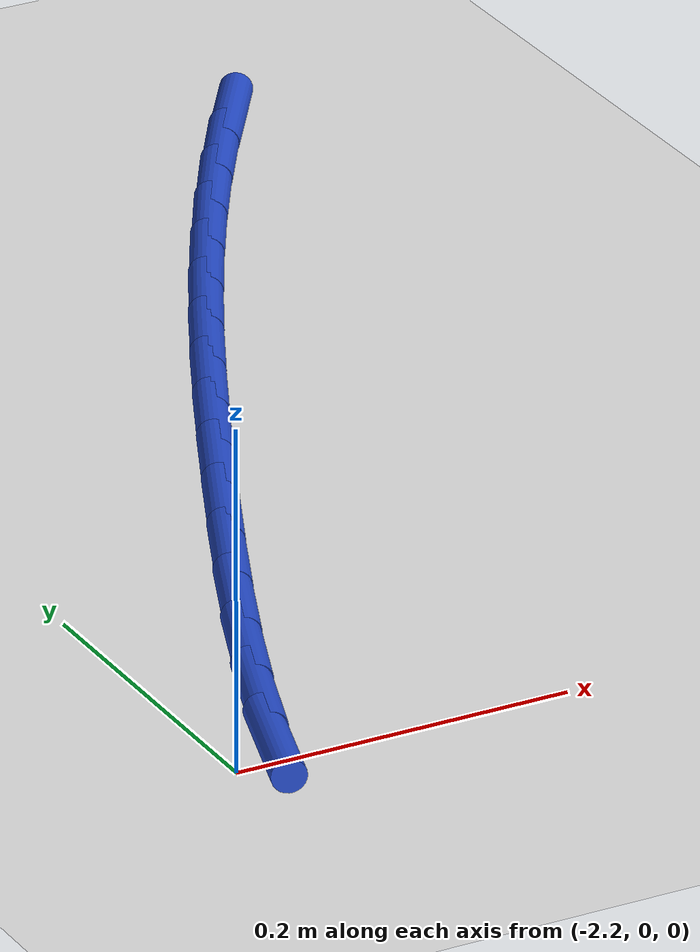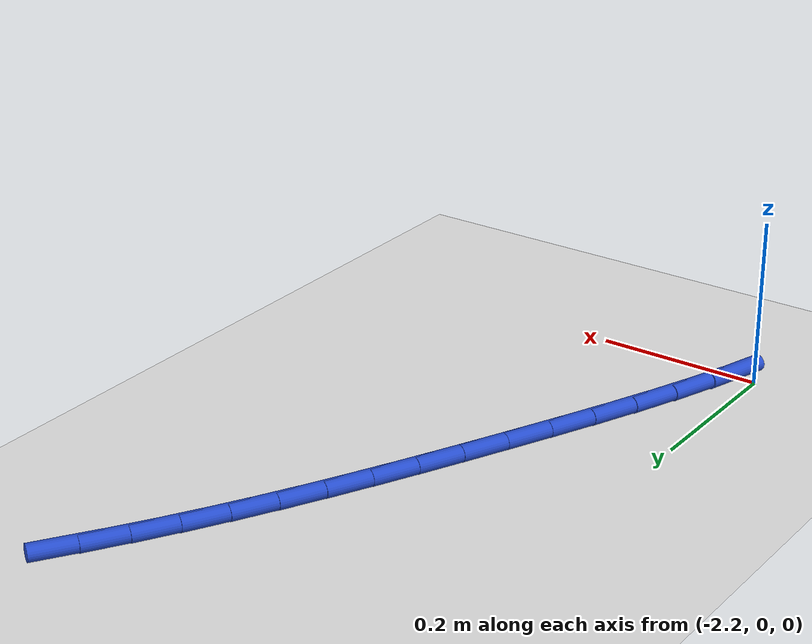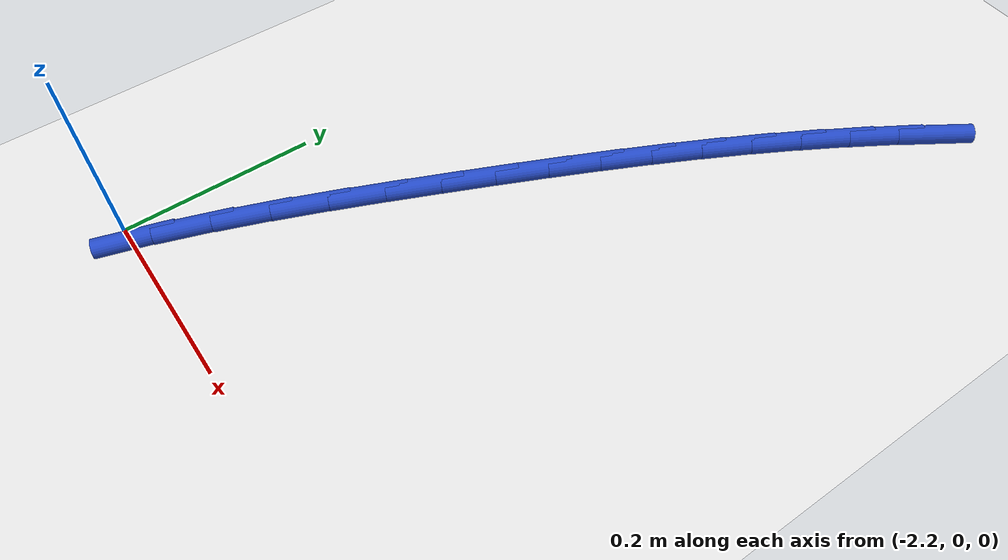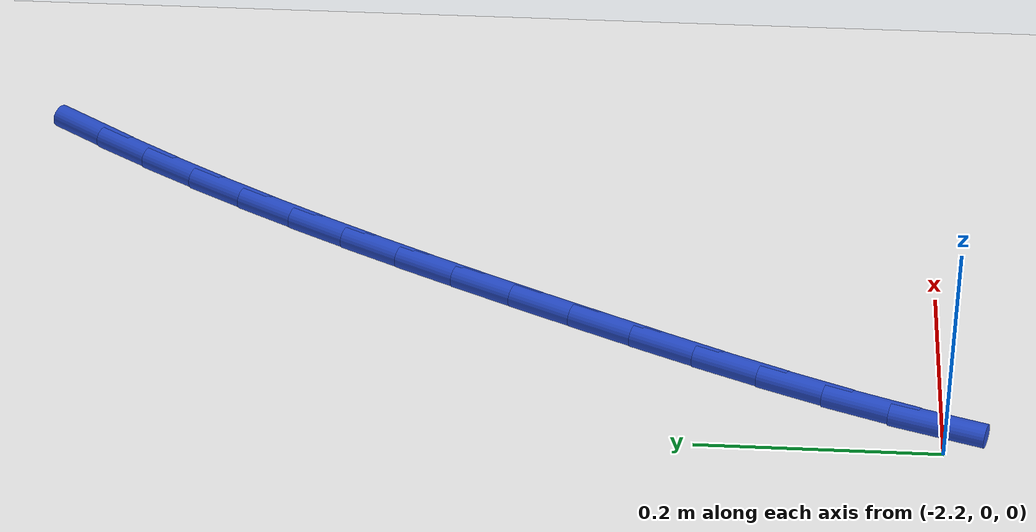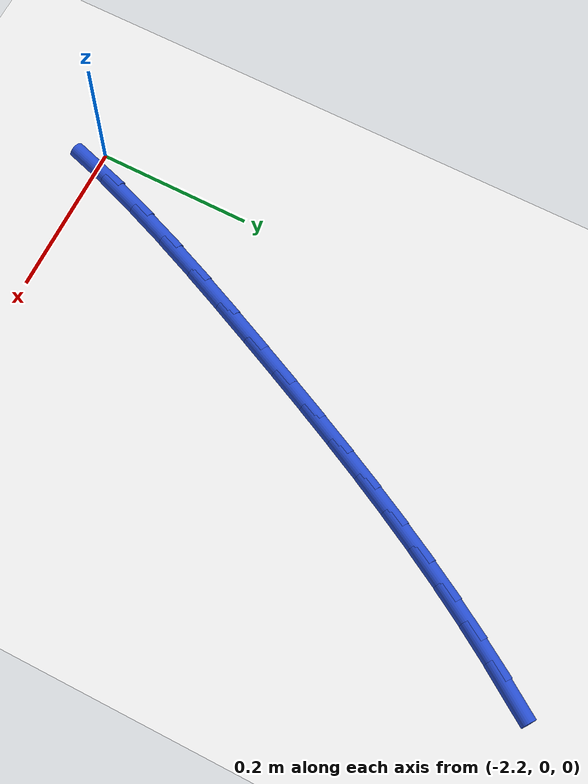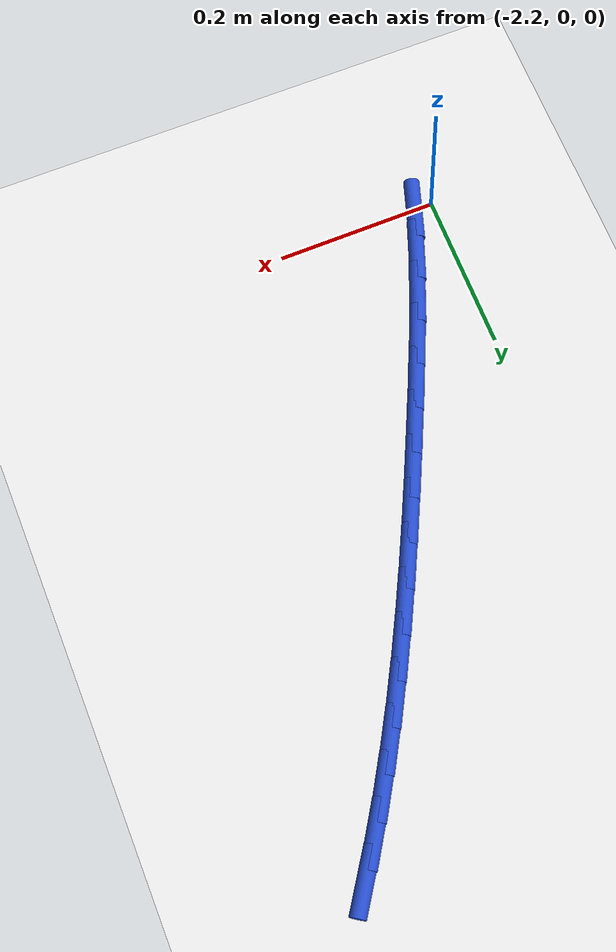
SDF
<sdf version="1.6">
 <world name="default">
  <model name="ground_plane">
   <static>1</static>
   <link name="link">
    <collision name="collision">
     <geometry><plane><normal>0 0 1</normal><size>100 100</size></plane></geometry>
     <surface><friction><ode><mu>100</mu><mu2>50</mu2></ode></friction></surface>
    </collision>
    <visual name="visual">
     <cast_shadows>0</cast_shadows>
     <geometry><plane><normal>0 0 1</normal><size>100 100</size></plane></geometry>
     <material>
      <script><uri>file://media/materials/scripts/gazebo.material</uri><name>Gazebo/WhiteGlow</name></script>
     </material>
    </visual>
   </link>
  </model>
  <model name="line">
   <link name="link_49">
    <pose>-1.8139922437743232 0.7383030247636497 0.01 0 1.57 0.9834664471267759</pose>
    <collision name="collision">
     <geometry><cylinder><radius>0.01</radius><length>0.08</length></cylinder></geometry>
    </collision>
    <visual name="visual">
     <material>
      <script><name>Gazebo/Blue</name><uri>file://media/materials/scripts/gazebo.material</uri></script>
     </material>
     <geometry><cylinder><radius>0.01</radius><length>0.08</length></cylinder></geometry>
    </visual>
   </link>
   <link name="link_50">
    <pose>-1.8427407423011142 0.6951173591197221 0.01 0 1.57 1.0109530893557677</pose>
    <collision name="collision">
     <geometry><cylinder><radius>0.01</radius><length>0.08</length></cylinder></geometry>
    </collision>
    <visual name="visual">
     <material>
      <script><name>Gazebo/Blue</name><uri>file://media/materials/scripts/gazebo.material</uri></script>
     </material>
     <geometry><cylinder><radius>0.01</radius><length>0.08</length></cylinder></geometry>
    </visual>
   </link>
   <link name="link_51">
    <pose>-1.8703745813255972 0.6510253463327991 0.01 0 1.57 1.0359826514307917</pose>
    <collision name="collision">
     <geometry><cylinder><radius>0.01</radius><length>0.08</length></cylinder></geometry>
    </collision>
    <visual name="visual">
     <material>
      <script><name>Gazebo/Blue</name><uri>file://media/materials/scripts/gazebo.material</uri></script>
     </material>
     <geometry><cylinder><radius>0.01</radius><length>0.08</length></cylinder></geometry>
    </visual>
   </link>
   <link name="link_52">
    <pose>-1.8970238676693079 0.6060401735559058 0.01 0 1.57 1.0584781533014944</pose>
    <collision name="collision">
     <geometry><cylinder><radius>0.01</radius><length>0.08</length></cylinder></geometry>
    </collision>
    <visual name="visual">
     <material>
      <script><name>Gazebo/Blue</name><uri>file://media/materials/scripts/gazebo.material</uri></script>
     </material>
     <geometry><cylinder><radius>0.01</radius><length>0.08</length></cylinder></geometry>
    </visual>
   </link>
   <link name="link_53">
    <pose>-1.9228187081537818 0.5601750279420664 0.01 0 1.57 1.0783964470671912</pose>
    <collision name="collision">
     <geometry><cylinder><radius>0.01</radius><length>0.08</length></cylinder></geometry>
    </collision>
    <visual name="visual">
     <material>
      <script><name>Gazebo/Blue</name><uri>file://media/materials/scripts/gazebo.material</uri></script>
     </material>
     <geometry><cylinder><radius>0.01</radius><length>0.08</length></cylinder></geometry>
    </visual>
   </link>
   <link name="link_54">
    <pose>-1.9478892096005556 0.5134430966443052 0.01 0 1.57 1.0957238981362276</pose>
    <collision name="collision">
     <geometry><cylinder><radius>0.01</radius><length>0.08</length></cylinder></geometry>
    </collision>
    <visual name="visual">
     <material>
      <script><name>Gazebo/Blue</name><uri>file://media/materials/scripts/gazebo.material</uri></script>
     </material>
     <geometry><cylinder><radius>0.01</radius><length>0.08</length></cylinder></geometry>
    </visual>
   </link>
   <link name="link_55">
    <pose>-1.9723654788311644 0.4658575668156473 0.01 0 1.57 1.1104718906891442</pose>
    <collision name="collision">
     <geometry><cylinder><radius>0.01</radius><length>0.08</length></cylinder></geometry>
    </collision>
    <visual name="visual">
     <material>
      <script><name>Gazebo/Blue</name><uri>file://media/materials/scripts/gazebo.material</uri></script>
     </material>
     <geometry><cylinder><radius>0.01</radius><length>0.08</length></cylinder></geometry>
    </visual>
   </link>
   <link name="link_56">
    <pose>-1.9963776226671446 0.41743162560911734 0.01 0 1.57 1.1226724806841313</pose>
    <collision name="collision">
     <geometry><cylinder><radius>0.01</radius><length>0.08</length></cylinder></geometry>
    </collision>
    <visual name="visual">
     <material>
      <script><name>Gazebo/Blue</name><uri>file://media/materials/scripts/gazebo.material</uri></script>
     </material>
     <geometry><cylinder><radius>0.01</radius><length>0.08</length></cylinder></geometry>
    </visual>
   </link>
   <link name="link_57">
    <pose>-2.0200557479300314 0.3681784601777396 0.01 0 1.57 1.1323744177511488</pose>
    <collision name="collision">
     <geometry><cylinder><radius>0.01</radius><length>0.08</length></cylinder></geometry>
    </collision>
    <visual name="visual">
     <material>
      <script><name>Gazebo/Blue</name><uri>file://media/materials/scripts/gazebo.material</uri></script>
     </material>
     <geometry><cylinder><radius>0.01</radius><length>0.08</length></cylinder></geometry>
    </visual>
   </link>
   <link name="link_58">
    <pose>-2.0435299614413616 0.31811125767453846 0.01 0 1.57 1.1396396657931522</pose>
    <collision name="collision">
     <geometry><cylinder><radius>0.01</radius><length>0.08</length></cylinder></geometry>
    </collision>
    <visual name="visual">
     <material>
      <script><name>Gazebo/Blue</name><uri>file://media/materials/scripts/gazebo.material</uri></script>
     </material>
     <geometry><cylinder><radius>0.01</radius><length>0.08</length></cylinder></geometry>
    </visual>
   </link>
   <link name="link_59">
    <pose>-2.0669303700226687 0.26724320525253853 0.01 0 1.57 1.1458406209262892</pose>
    <collision name="collision">
     <geometry><cylinder><radius>0.01</radius><length>0.08</length></cylinder></geometry>
    </collision>
    <visual name="visual">
     <material>
      <script><name>Gazebo/Blue</name><uri>file://media/materials/scripts/gazebo.material</uri></script>
     </material>
     <geometry><cylinder><radius>0.01</radius><length>0.08</length></cylinder></geometry>
    </visual>
   </link>
   <link name="link_60">
    <pose>-2.0902969349050693 0.21560778681634046 0.01 0 1.57 1.1567920508438319</pose>
    <collision name="collision">
     <geometry><cylinder><radius>0.01</radius><length>0.08</length></cylinder></geometry>
    </collision>
    <visual name="visual">
     <material>
      <script><name>Gazebo/Blue</name><uri>file://media/materials/scripts/gazebo.material</uri></script>
     </material>
     <geometry><cylinder><radius>0.01</radius><length>0.08</length></cylinder></geometry>
    </visual>
   </link>
   <link name="link_61">
    <pose>-2.1132683155627023 0.16332884146185095 0.01 0 1.57 1.1741616659342207</pose>
    <collision name="collision">
     <geometry><cylinder><radius>0.01</radius><length>0.08</length></cylinder></geometry>
    </collision>
    <visual name="visual">
     <material>
      <script><name>Gazebo/Blue</name><uri>file://media/materials/scripts/gazebo.material</uri></script>
     </material>
     <geometry><cylinder><radius>0.01</radius><length>0.08</length></cylinder></geometry>
    </visual>
   </link>
   <link name="link_62">
    <pose>-2.1353715422622197 0.11055534218539766 0.01 0 1.57 1.198194412826975</pose>
    <collision name="collision">
     <geometry><cylinder><radius>0.01</radius><length>0.08</length></cylinder></geometry>
    </collision>
    <visual name="visual">
     <material>
      <script><name>Gazebo/Blue</name><uri>file://media/materials/scripts/gazebo.material</uri></script>
     </material>
     <geometry><cylinder><radius>0.01</radius><length>0.08</length></cylinder></geometry>
    </visual>
   </link>
   <link name="link_63">
    <pose>-2.1561336407206895 0.05743626300767042 0.01 0 1.57 1.2293255769980878</pose>
    <collision name="collision">
     <geometry><cylinder><radius>0.01</radius><length>0.08</length></cylinder></geometry>
    </collision>
    <visual name="visual">
     <material>
      <script><name>Gazebo/Blue</name><uri>file://media/materials/scripts/gazebo.material</uri></script>
     </material>
     <geometry><cylinder><radius>0.01</radius><length>0.08</length></cylinder></geometry>
    </visual>
   </link>
   <link name="link_64">
    <pose>-2.1750816366551815 0.0041205779493589546 0.01 0 1.57 1.2681695674631865</pose>
    <collision name="collision">
     <geometry><cylinder><radius>0.01</radius><length>0.08</length></cylinder></geometry>
    </collision>
    <visual name="visual">
     <material>
      <script><name>Gazebo/Blue</name><uri>file://media/materials/scripts/gazebo.material</uri></script>
     </material>
     <geometry><cylinder><radius>0.01</radius><length>0.08</length></cylinder></geometry>
    </visual>
   </link>
  </model>
 </world>
</sdf>
